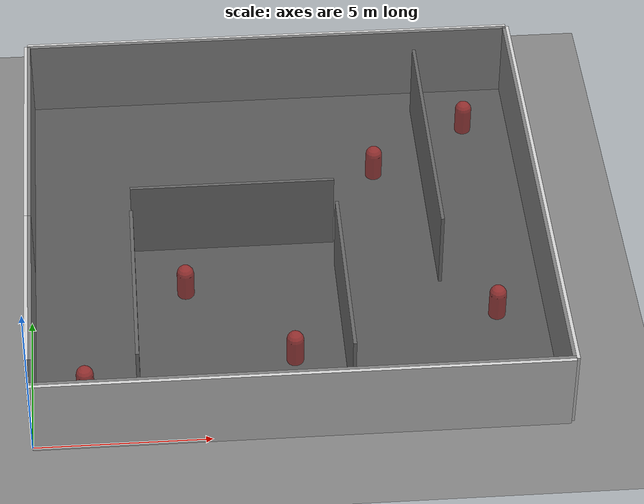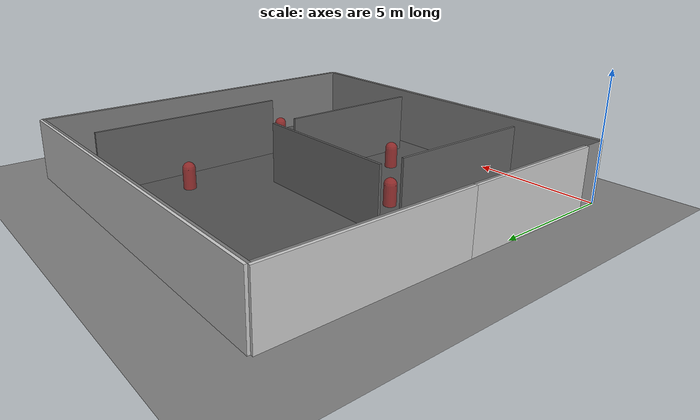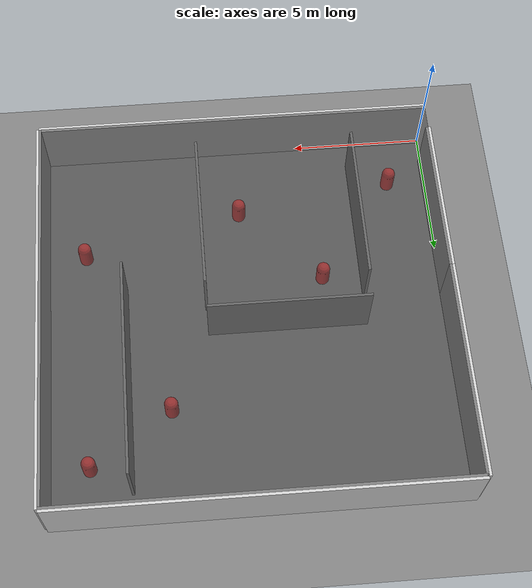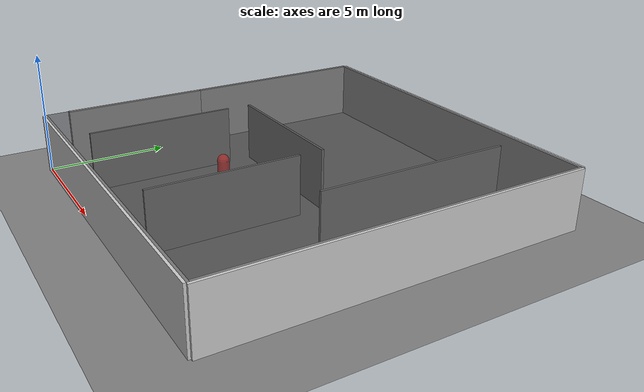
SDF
<?xml version="1.0" ?>
<sdf version="1.9">
  <world name="airmouse_maze_world">
    <physics name="1ms" type="ignored">
      <max_step_size>0.002</max_step_size>
      <real_time_factor>1.0</real_time_factor>
    </physics>

    <plugin
      filename="gz-sim-physics-system"
      name="gz::sim::systems::Physics">
    </plugin>
    <plugin
      filename="gz-sim-user-commands-system"
      name="gz::sim::systems::UserCommands">
    </plugin>
    <plugin
      filename="gz-sim-scene-broadcaster-system"
      name="gz::sim::systems::SceneBroadcaster">
    </plugin>
    <plugin
      filename="gz-sim-sensors-system"
      name="gz::sim::systems::Sensors">
      <render_engine>ogre2</render_engine>
    </plugin>
    <plugin
      filename="gz-sim-imu-system"
      name="gz::sim::systems::Imu">
    </plugin>

    <!-- Directional Light -->
    <light type="directional" name="sun">
      <cast_shadows>true</cast_shadows>
      <pose>0 0 10 0 0 0</pose>
      <diffuse>0.8 0.8 0.8 1</diffuse>
      <specular>0.2 0.2 0.2 1</specular>
      <direction>-0.5 0.1 -0.9</direction>
    </light>

    <!-- Ground Plane / Arena Floor -->
    <model name="ground_plane">
      <static>true</static>
      <link name="link">
        <collision name="collision">
          <geometry>
            <plane>
              <normal>0 0 1</normal>
              <size>20 20</size>
            </plane>
          </geometry>
        </collision>
        <visual name="visual">
          <geometry>
            <plane>
              <normal>0 0 1</normal>
              <size>20 20</size>
            </plane>
          </geometry>
          <material>
            <ambient>0.3 0.3 0.3 1</ambient>
            <diffuse>0.5 0.5 0.5 1</diffuse>
          </material>
        </visual>
      </link>
    </model>

    <!-- Outer Perimeter Walls (15m x 15m arena, 2.44m / 8ft height) -->
    <!-- North Wall -->
    <model name="wall_north">
      <static>true</static>
      <pose>7.5 15 1.22 0 0 0</pose>
      <link name="link">
        <collision name="col"><geometry><box><size>15 0.2 2.44</size></box></geometry></collision>
        <visual name="vis"><geometry><box><size>15 0.2 2.44</size></box></geometry>
          <material><ambient>0.7 0.7 0.7 1</ambient><diffuse>0.8 0.8 0.8 1</diffuse></material>
        </visual>
      </link>
    </model>

    <!-- South Wall -->
    <model name="wall_south">
      <static>true</static>
      <pose>7.5 0 1.22 0 0 0</pose>
      <link name="link">
        <collision name="col"><geometry><box><size>15 0.2 2.44</size></box></geometry></collision>
        <visual name="vis"><geometry><box><size>15 0.2 2.44</size></box></geometry>
          <material><ambient>0.7 0.7 0.7 1</ambient><diffuse>0.8 0.8 0.8 1</diffuse></material>
        </visual>
      </link>
    </model>

    <!-- East Wall -->
    <model name="wall_east">
      <static>true</static>
      <pose>15 7.5 1.22 0 0 0</pose>
      <link name="link">
        <collision name="col"><geometry><box><size>0.2 15 2.44</size></box></geometry></collision>
        <visual name="vis"><geometry><box><size>0.2 15 2.44</size></box></geometry>
          <material><ambient>0.7 0.7 0.7 1</ambient><diffuse>0.8 0.8 0.8 1</diffuse></material>
        </visual>
      </link>
    </model>

    <!-- West Wall (with Entry/Exit gap at y=0.5 to y=1.5) -->
    <model name="wall_west_lower">
      <static>true</static>
      <pose>0 4.0 1.22 0 0 0</pose>
      <link name="link">
        <collision name="col"><geometry><box><size>0.2 6.0 2.44</size></box></geometry></collision>
        <visual name="vis"><geometry><box><size>0.2 6.0 2.44</size></box></geometry>
          <material><ambient>0.7 0.7 0.7 1</ambient><diffuse>0.8 0.8 0.8 1</diffuse></material>
        </visual>
      </link>
    </model>

    <model name="wall_west_upper">
      <static>true</static>
      <pose>0 11.0 1.22 0 0 0</pose>
      <link name="link">
        <collision name="col"><geometry><box><size>0.2 8.0 2.44</size></box></geometry></collision>
        <visual name="vis"><geometry><box><size>0.2 8.0 2.44</size></box></geometry>
          <material><ambient>0.7 0.7 0.7 1</ambient><diffuse>0.8 0.8 0.8 1</diffuse></material>
        </visual>
      </link>
    </model>

    <!-- Top Mesh Net / Ceiling Cover -->
    <model name="top_net">
      <static>true</static>
      <pose>7.5 7.5 2.44 0 0 0</pose>
      <link name="link">
        <collision name="col"><geometry><box><size>15 15 0.02</size></box></geometry></collision>
        <visual name="vis"><geometry><box><size>15 15 0.02</size></box></geometry>
          <material><ambient>0.1 0.1 0.1 0.5</ambient><diffuse>0.2 0.2 0.2 0.5</diffuse></material>
        </visual>
      </link>
    </model>

    <!-- Internal Maze Room & Corridor Walls -->
    <!-- Wall Segment 1 -->
    <model name="int_wall_1">
      <static>true</static>
      <pose>3.0 4.0 1.22 0 0 0</pose>
      <link name="link">
        <collision name="col"><geometry><box><size>0.1 6.0 2.44</size></box></geometry></collision>
        <visual name="vis"><geometry><box><size>0.1 6.0 2.44</size></box></geometry>
          <material><ambient>0.5 0.5 0.5 1</ambient><diffuse>0.6 0.6 0.6 1</diffuse></material>
        </visual>
      </link>
    </model>

    <!-- Wall Segment 2 -->
    <model name="int_wall_2">
      <static>true</static>
      <pose>6.0 8.0 1.22 0 0 0</pose>
      <link name="link">
        <collision name="col"><geometry><box><size>6.0 0.1 2.44</size></box></geometry></collision>
        <visual name="vis"><geometry><box><size>6.0 0.1 2.44</size></box></geometry>
          <material><ambient>0.5 0.5 0.5 1</ambient><diffuse>0.6 0.6 0.6 1</diffuse></material>
        </visual>
      </link>
    </model>

    <!-- Wall Segment 3 -->
    <model name="int_wall_3">
      <static>true</static>
      <pose>9.0 4.0 1.22 0 0 0</pose>
      <link name="link">
        <collision name="col"><geometry><box><size>0.1 6.0 2.44</size></box></geometry></collision>
        <visual name="vis"><geometry><box><size>0.1 6.0 2.44</size></box></geometry>
          <material><ambient>0.5 0.5 0.5 1</ambient><diffuse>0.6 0.6 0.6 1</diffuse></material>
        </visual>
      </link>
    </model>

    <!-- Wall Segment 4 -->
    <model name="int_wall_4">
      <static>true</static>
      <pose>12.0 10.0 1.22 0 0 0</pose>
      <link name="link">
        <collision name="col"><geometry><box><size>0.1 8.0 2.44</size></box></geometry></collision>
        <visual name="vis"><geometry><box><size>0.1 8.0 2.44</size></box></geometry>
          <material><ambient>0.5 0.5 0.5 1</ambient><diffuse>0.6 0.6 0.6 1</diffuse></material>
        </visual>
      </link>
    </model>

    <!-- Survivors (6 distinct target models placed in rooms/corridors) -->
    <!-- Survivor 1 (Grid A2: x=1.5, y=2.0) -->
    <model name="survivor_1">
      <static>true</static>
      <pose>1.5 2.0 0.4 0 0 0</pose>
      <link name="link">
        <collision name="col"><geometry><capsule><radius>0.25</radius><length>0.8</length></capsule></geometry></collision>
        <visual name="vis"><geometry><capsule><radius>0.25</radius><length>0.8</length></capsule></geometry>
          <material><ambient>0.9 0.1 0.1 1</ambient><diffuse>1.0 0.2 0.2 1</diffuse></material>
        </visual>
      </link>
    </model>

    <!-- Survivor 2 (Grid B5: x=4.5, y=6.0) -->
    <model name="survivor_2">
      <static>true</static>
      <pose>4.5 6.0 0.4 0 0 0</pose>
      <link name="link">
        <collision name="col"><geometry><capsule><radius>0.25</radius><length>0.8</length></capsule></geometry></collision>
        <visual name="vis"><geometry><capsule><radius>0.25</radius><length>0.8</length></capsule></geometry>
          <material><ambient>0.9 0.1 0.1 1</ambient><diffuse>1.0 0.2 0.2 1</diffuse></material>
        </visual>
      </link>
    </model>

    <!-- Survivor 3 (Grid C3: x=7.5, y=3.0) -->
    <model name="survivor_3">
      <static>true</static>
      <pose>7.5 3.0 0.4 0 0 0</pose>
      <link name="link">
        <collision name="col"><geometry><capsule><radius>0.25</radius><length>0.8</length></capsule></geometry></collision>
        <visual name="vis"><geometry><capsule><radius>0.25</radius><length>0.8</length></capsule></geometry>
          <material><ambient>0.9 0.1 0.1 1</ambient><diffuse>1.0 0.2 0.2 1</diffuse></material>
        </visual>
      </link>
    </model>

    <!-- Survivor 4 (Grid D6: x=10.5, y=11.0) -->
    <model name="survivor_4">
      <static>true</static>
      <pose>10.5 11.0 0.4 0 0 0</pose>
      <link name="link">
        <collision name="col"><geometry><capsule><radius>0.25</radius><length>0.8</length></capsule></geometry></collision>
        <visual name="vis"><geometry><capsule><radius>0.25</radius><length>0.8</length></capsule></geometry>
          <material><ambient>0.9 0.1 0.1 1</ambient><diffuse>1.0 0.2 0.2 1</diffuse></material>
        </visual>
      </link>
    </model>

    <!-- Survivor 5 (Grid E4: x=13.5, y=4.5) -->
    <model name="survivor_5">
      <static>true</static>
      <pose>13.5 4.5 0.4 0 0 0</pose>
      <link name="link">
        <collision name="col"><geometry><capsule><radius>0.25</radius><length>0.8</length></capsule></geometry></collision>
        <visual name="vis"><geometry><capsule><radius>0.25</radius><length>0.8</length></capsule></geometry>
          <material><ambient>0.9 0.1 0.1 1</ambient><diffuse>1.0 0.2 0.2 1</diffuse></material>
        </visual>
      </link>
    </model>

    <!-- Survivor 6 (Grid E7: x=13.5, y=13.0) -->
    <model name="survivor_6">
      <static>true</static>
      <pose>13.5 13.0 0.4 0 0 0</pose>
      <link name="link">
        <collision name="col"><geometry><capsule><radius>0.25</radius><length>0.8</length></capsule></geometry></collision>
        <visual name="vis"><geometry><capsule><radius>0.25</radius><length>0.8</length></capsule></geometry>
          <material><ambient>0.9 0.1 0.1 1</ambient><diffuse>1.0 0.2 0.2 1</diffuse></material>
        </visual>
      </link>
    </model>

  </world>
</sdf>
